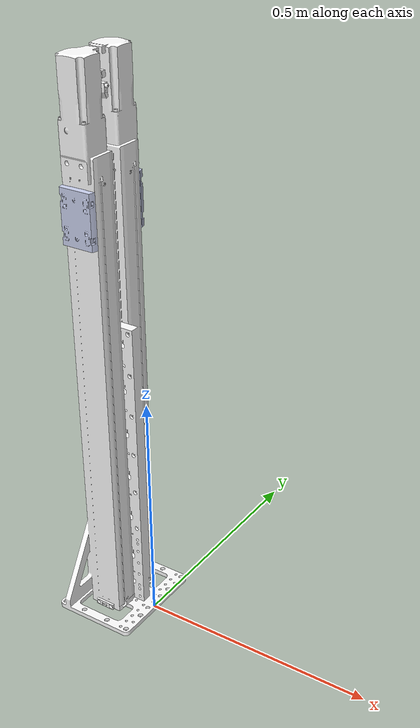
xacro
<?xml version="1.0"?>
<!-- Revolute-Revolute Manipulator -->
<robot name="Slide_rail" xmlns:xacro="http://www.ros.org/wiki/xacro">

  <link
    name="base_link">
    <inertial>
      <origin
        xyz="-0.0851417739507414 -0.00235325608423029 0.461901876327646"
        rpy="0 0 0" />
      <mass
        value="1300.2157378026818" />
      <inertia
        ixx="1.5723643860749"
        ixy="-0.0018400889955638"
        ixz="-0.0259807481556023"
        iyy="1.56653528372694"
        iyz="-0.0223413171800455"
        izz="0.0334677964955424" />
    </inertial>
    <visual>
      <origin
        xyz="0 0 0"
        rpy="0 0 0" />
      <geometry>
        <mesh
          filename="package://Slide_rail/meshes/base_link.STL" />
      </geometry>
      <material
        name="">
        <color
          rgba="1 1 1 1" />
      </material>
    </visual>
    <collision>
      <origin
        xyz="0 0 0"
        rpy="0 0 0" />
      <geometry>
        <mesh
          filename="package://Slide_rail/meshes/base_link.STL" />
      </geometry>
    </collision>
  </link>
  <link
    name="Arm_Base_R_Link">
    <inertial>
      <origin
        xyz="0 0.022625966524659 0"
        rpy="0 0 0" />
      <mass
        value="0.2915148495066668" />
      <inertia
        ixx="1.50001518227245"
        ixy="6.65500499430702E-09"
        ixz="-5.17853701338548E-09"
        iyy="1.50418097290043"
        iyz="-1.04084246775258E-09"
        izz="0.029919292165612" />
    </inertial>
    <visual>
      <origin
        xyz="0 0 0"
        rpy="0 0 0" />
      <geometry>
        <mesh
          filename="package://Slide_rail/meshes/Arm_Base_R_Link.STL" />
      </geometry>
      <material
        name="">
        <color
          rgba="0.792156862745098 0.819607843137255 0.933333333333333 1" />
      </material>
    </visual>
    <collision>
      <origin
        xyz="0 0 0"
        rpy="0 0 0" />
      <geometry>
        <mesh
          filename="package://Slide_rail/meshes/Arm_Base_R_Link.STL" />
      </geometry>
    </collision>
  </link>
  <joint
    name="Slide_R"
    type="prismatic">
    <origin
      xyz="-0.08 -0.0925 0.88886"
      rpy="0 0 0" />
    <parent
      link="base_link" />
    <child
      link="Arm_Base_R_Link" />
    <axis
      xyz="0 0 1" />
    <limit
      lower="-0.8"
      upper="0"
      effort="500"
      velocity="100" />
  </joint>
  <link
    name="Arm_Base_L_Link">
    <inertial>
      <origin
        xyz="0 -0.022625966524659 0"
        rpy="0 0 0" />
      <mass
        value="0.2915148495066669" />
      <inertia
        ixx="1.501518227246"
        ixy="6.655004994278E-09"
        ixz="5.1785370134074E-09"
        iyy="1.50418097290043"
        iyz="1.04084246778742E-09"
        izz="0.29919292165613" />
    </inertial>
    <visual>
      <origin
        xyz="0 0 0"
        rpy="0 0 0" />
      <geometry>
        <mesh
          filename="package://Slide_rail/meshes/Arm_Base_L_Link.STL" />
      </geometry>
      <material
        name="">
        <color
          rgba="0.792156862745098 0.819607843137255 0.933333333333333 1" />
      </material>
    </visual>
    <collision>
      <origin
        xyz="0 0 0"
        rpy="0 0 0" />
      <geometry>
        <mesh
          filename="package://Slide_rail/meshes/Arm_Base_L_Link.STL" />
      </geometry>
    </collision>
  </link>
  <joint
    name="Slide_L"
    type="prismatic">
    <origin
      xyz="-0.08 0.0925 0.88886"
      rpy="0 0 0" />
    <parent
      link="base_link" />
    <child
      link="Arm_Base_L_Link" />
    <axis
      xyz="0 0 1" />
    <limit
      lower="-0.8"
      upper="0"
      effort="500"
      velocity="100" />
  </joint>
</robot>
